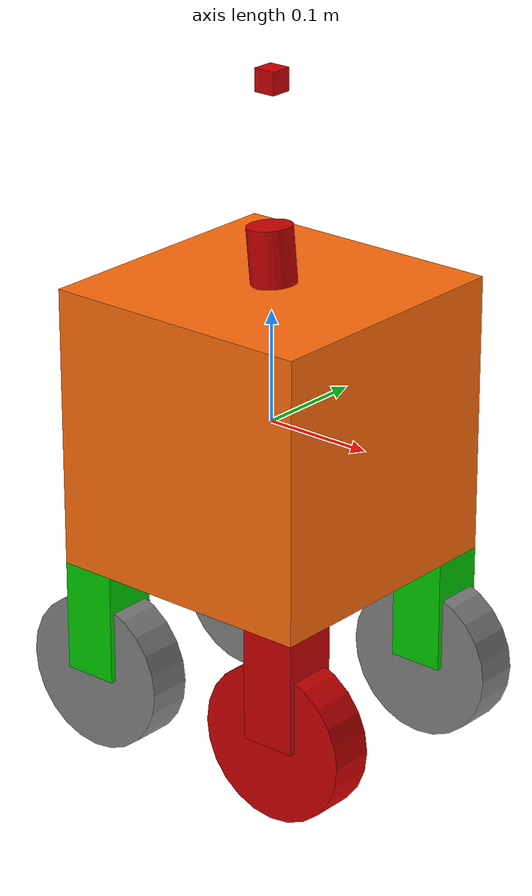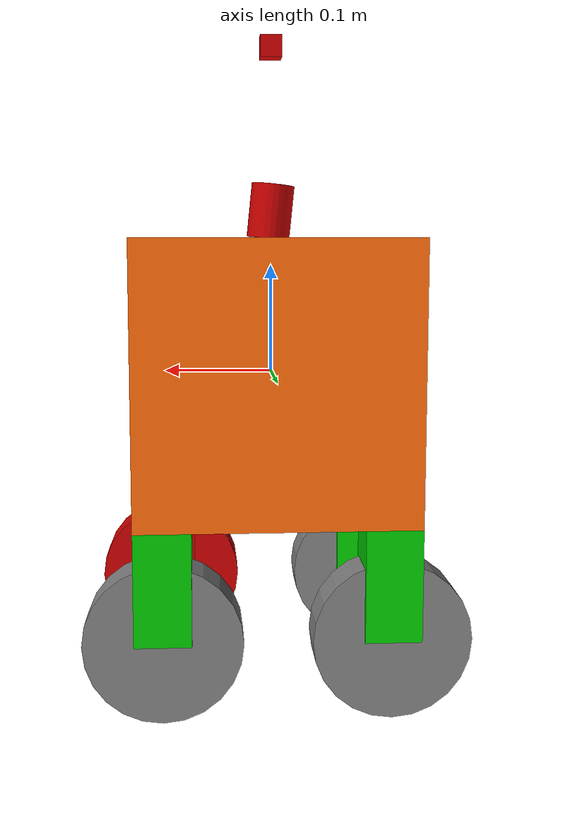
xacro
<?xml version="1.0"?>
<robot name="box_robot" xmlns:xacro="http://www.ros.org/wiki/xacro">

  <xacro:include filename="$(find homewhere)/urdf/color.xacro" />
  <xacro:include filename="$(find homewhere)/urdf/color.gazebo.xacro" />
  <xacro:include filename="$(find homewhere)/urdf/plugin.xacro" />

  <!-- 0) Properties      -->

  <xacro:property name="base_mass" value="20.0" />
  <xacro:property name="base_size" value="0.25 0.25 0.25" />

  <xacro:property name="steer_mass" value="2.0" />
  <xacro:property name="steer_size" value="0.05 0.05 0.1" />

  <xacro:property name="wheel_mass" value="2.0" />
  <xacro:property name="wheel_radius" value="0.07" />
  <xacro:property name="wheel_length" value="0.04" />

  <link name="base_link"></link>
  <link name="base_footprint" />
  <joint name="base_joint" type="fixed">
    <parent link="base_footprint" />
    <child link="base_link" />
    <origin xyz="0 0 0" rpy="0 0 0" />
  </joint>

  <!-- 1) Base Link       -->

  <link name="body">
    <visual>
      <geometry>
        <box size="${base_size}" />
      </geometry>
      <material name="orange" />
    </visual>

    <collision>
      <geometry>
        <box size="${base_size}" />
      </geometry>
    </collision>

    <inertial>
      <mass value="${base_mass}" />
      <origin xyz="0 0 0" />
      <inertia
        ixx="0.208" ixy="0.0" ixz="0.0"
        iyy="0.208" iyz="0.0"
        izz="0.208" />
    </inertial>
  </link>

  <joint name="base_to_body" type="fixed">
    <parent link="base_link" />
    <child link="body" />
    <origin xyz="0 0 0" />
  </joint>

  <!-- 2) Wheel       -->

  <xacro:macro name="steering_wheel" params="name x y">

    <!-- roll = 1.57 to rotate the wheel upright-->
    <link name="wheel_${name}">
      <visual>
        <geometry>
          <cylinder length="${wheel_length}" radius="${wheel_radius}" />
        </geometry>
        <origin xyz="0 0 0" rpy="1.57 0 0" />
        <xacro:if value="${name == 'front_right'}">
          <material name="red" />
        </xacro:if>
        <xacro:unless value="${name == 'front_right'}">
          <material name="grey" />
        </xacro:unless>
      </visual>

      <collision>
        <geometry>
          <cylinder length="${wheel_length}" radius="${wheel_radius}" />
        </geometry>
        <origin xyz="0 0 0" rpy="1.57 0 0" />
      </collision>

      <inertial>
        <mass value="${wheel_mass}" />
        <origin xyz="0 0 0" />
        <inertia
          ixx="0.0027" ixy="0.0" ixz="0.0"
          iyy="0.0049" iyz="0.0"
          izz="0.0027" />
      </inertial>
    </link>

    <link name="steer_${name}">
      <visual>
        <geometry>
          <box size="${steer_size}" />
        </geometry>
        <origin xyz="0 0 0" rpy="0 0 0" />
        <xacro:if value="${name == 'front_right'}">
          <material name="red" />
        </xacro:if>
        <xacro:unless value="${name == 'front_right'}">
          <material name="green" />
        </xacro:unless>
      </visual>

      <inertial>
        <mass value="${steer_mass}" />
        <origin xyz="0 0 0" />
        <inertia
          ixx="0" ixy="0" ixz="0"
          iyy="0" iyz="0"
          izz="0" />
      </inertial>
    </link>

    <!-- z = base_side/2 + leg/2 -->

    <!-- z = base_side/2 + leg/2 -->
    <joint name="steer_${name}_joint" type="continuous">
      <parent link="body" />
      <child link="steer_${name}" />
      <origin xyz="${x} ${y} -0.175" rpy="0 0 0" />
      <axis xyz="0 0 1" />
      -->
    </joint>

    <!-- z = -leg/2 -->
    <joint name="wheel_${name}_joint" type="continuous">
      <parent link="steer_${name}" />
      <child link="wheel_${name}" />
      <origin xyz="0 0 -0.05" />
      <axis xyz="0 1 0" />
    </joint>

  </xacro:macro>

    <!-- Imu link      -->
    <link name="imu_link">
      <visual>
        <geometry>
          <box size="0.02 0.02 0.02" />
        </geometry>
        <material name="red"/>
      </visual>
    </link>

    <joint name="imu_joint" type="fixed">
      <parent link="body"/>
      <child link="imu_link"/>
      <origin xyz="0 0 0.3" rpy="0 0 0"/>
    </joint>

  <!-- 3) Lidar       -->

  <link name="base_scan">
    <visual>
      <geometry>
        <cylinder length="0.05" radius="0.02" />
      </geometry>
      <material name="red" />
    </visual>
  </link>

  <joint name="scan_joint" type="fixed">
    <parent link="base_link" />
    <child link="base_scan" />
    <origin xyz="0 0 0.15" rpy="0 -0.1 0" />
  </joint>

  <xacro:steering_wheel name="front_left" x="0.1" y="0.1" />
  <xacro:steering_wheel name="front_right" x="0.1" y="-0.1" />
  <xacro:steering_wheel name="rear_left" x="-0.1" y="0.1" />
  <xacro:steering_wheel name="rear_right" x="-0.1" y="-0.1" />

</robot>

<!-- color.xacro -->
<robot name="color" xmlns:xacro="http://ros.org/wiki/xacro">

  <material name="black">
    <color rgba="0.0 0.0 0.0 1.0" />
  </material>

  <material name="dark">
    <color rgba="0.3 0.3 0.3 1.0" />
  </material>

  <material name="light_black">
    <color rgba="0.4 0.4 0.4 1.0" />
  </material>

  <material name="blue">
    <color rgba="0.0 0.0 0.8 1.0" />
  </material>

  <material name="green">
    <color rgba="0.0 0.8 0.0 1.0" />
  </material>

  <material name="grey">
    <color rgba="0.5 0.5 0.5 1.0" />
  </material>

  <material name="orange">
    <color rgba="${255/255} ${108/255} ${10/255} 1.0" />
  </material>

  <material name="brown">
    <color rgba="${222/255} ${207/255} ${195/255} 1.0" />
  </material>

  <material name="red">
    <color rgba="0.8 0.0 0.0 1.0" />
  </material>

  <material name="white">
    <color rgba="1.0 1.0 1.0 1.0" />
  </material>
</robot>
